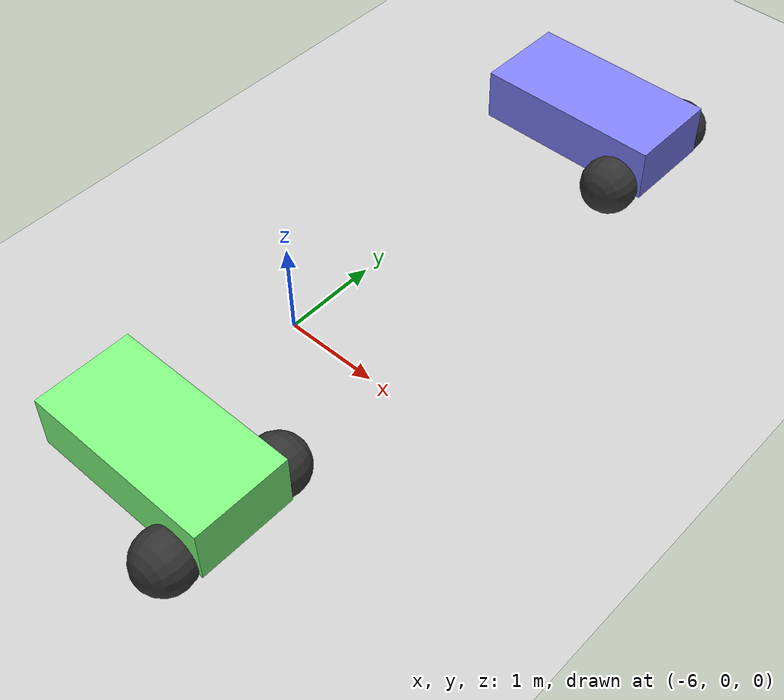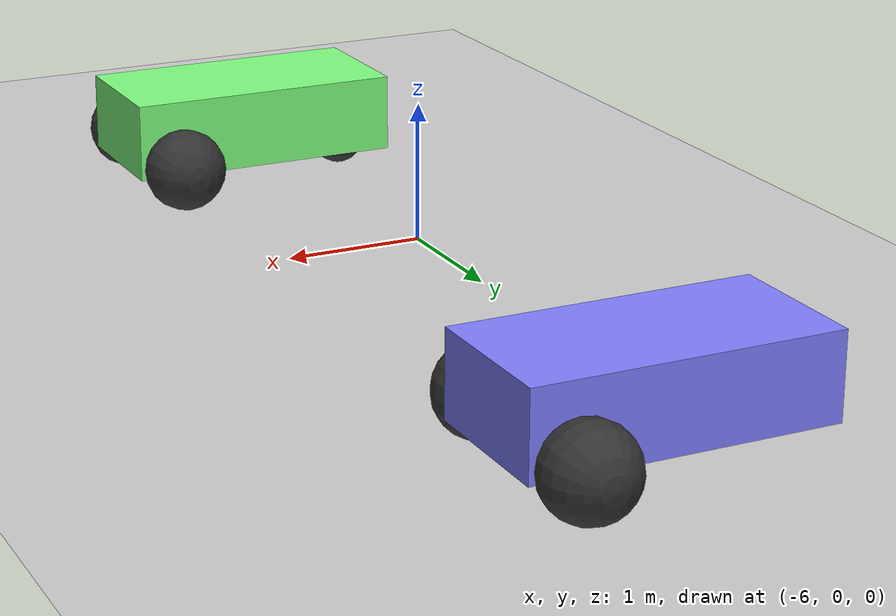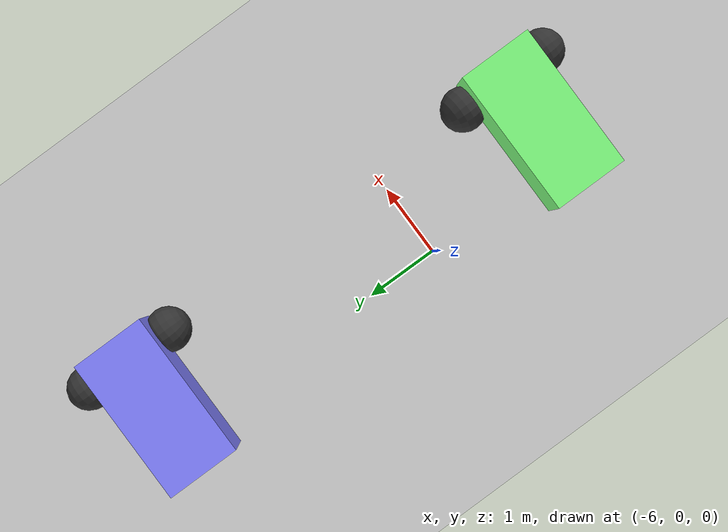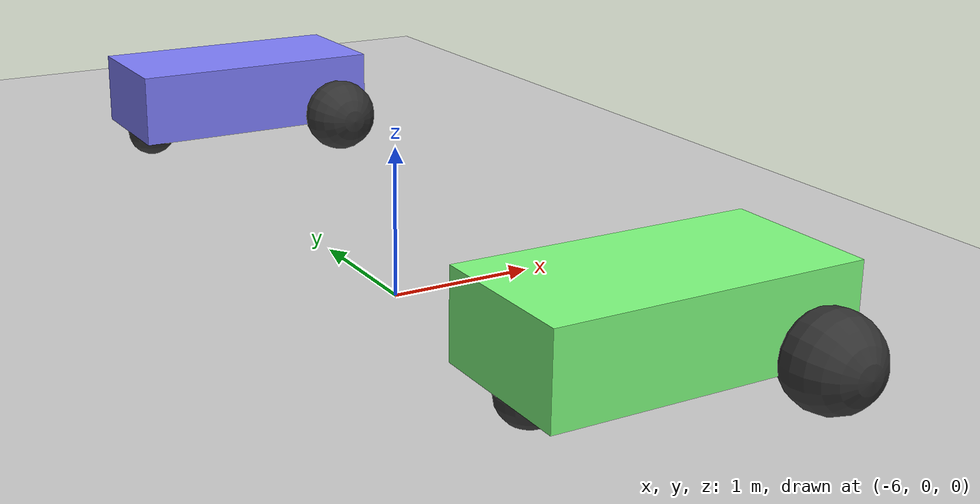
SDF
<sdf version="1.6">
 <world name="lookup_wheel_slip">
  <gravity>-1 0 -9.8</gravity>
  <physics name="1ms" type="ignored"><dart><collision_detector>bullet</collision_detector></dart></physics>
  <plugin filename="gz-sim-physics-system" name="gz::sim::systems::Physics"/>
  <plugin filename="gz-sim-user-commands-system" name="gz::sim::systems::UserCommands"/>
  <plugin filename="gz-sim-scene-broadcaster-system" name="gz::sim::systems::SceneBroadcaster"/>
  <model name="ground_plane">
   <static>true</static>
   <link name="link">
    <collision name="collision">
     <geometry><plane><normal>0 0 1</normal><size>100 100</size></plane></geometry>
    </collision>
    <visual name="visual">
     <geometry><plane><normal>0 0 1</normal><size>100 100</size></plane></geometry>
     <material>
      <ambient>0.8 0.8 0.8 1</ambient>
      <diffuse>0.8 0.8 0.8 1</diffuse>
      <specular>0.8 0.8 0.8 1</specular>
     </material>
    </visual>
   </link>
  </model>
  <light type="directional" name="sun">
   <pose>0 0 10 0 0 0</pose>
   <diffuse>1 1 1 1</diffuse>
   <specular>0.5 0.5 0.5 1</specular>
   <attenuation>
    <range>1000</range>
    <constant>0.9</constant>
    <linear>0.01</linear>
    <quadratic>0.001</quadratic>
   </attenuation>
   <direction>-0.5 0.1 -0.9</direction>
  </light>
  <model name="vehicle_green">
   <pose>-5.3105 -2 0.325 0 -0 0</pose>
   <link name="chassis">
    <pose>-0.151427 -0 0.175 0 -0 0</pose>
    <inertial>
     <mass>1.14395</mass>
     <inertia>
      <ixx>0.126164</ixx>
      <ixy>0</ixy>
      <ixz>0</ixz>
      <iyy>0.416519</iyy>
      <iyz>0</iyz>
      <izz>0.481014</izz>
     </inertia>
    </inertial>
    <visual name="visual">
     <geometry><box><size>2.01142 1 0.568726</size></box></geometry>
     <material>
      <ambient>0.5 1.0 0.5 1</ambient>
      <diffuse>0.5 1.0 0.5 1</diffuse>
      <specular>0.0 1.0 0.0 1</specular>
     </material>
    </visual>
    <collision name="collision"><geometry><box><size>2.01142 1 0.568726</size></box></geometry></collision>
   </link>
   <link name="left_wheel">
    <pose>0.554283 0.625029 -0.025 -1.5707 0 0</pose>
    <inertial>
     <mass>2</mass>
     <inertia><ixx>0.145833</ixx><ixy>0</ixy><ixz>0</ixz><iyy>0.145833</iyy><iyz>0</iyz><izz>0.125</izz></inertia>
    </inertial>
    <visual name="visual">
     <geometry><sphere><radius>0.3</radius></sphere></geometry>
     <material>
      <ambient>0.2 0.2 0.2 1</ambient>
      <diffuse>0.2 0.2 0.2 1</diffuse>
      <specular>0.2 0.2 0.2 1</specular>
     </material>
    </visual>
    <collision name="collision">
     <geometry><sphere><radius>0.3</radius></sphere></geometry>
     <surface>
      <friction>
       <ode><mu>1</mu><mu2>1</mu2><slip1>0.035</slip1><slip2>0</slip2><fdir1>0 0 1</fdir1></ode>
       <bullet><friction>1</friction><friction2>1</friction2><rolling_friction>0.1</rolling_friction></bullet>
      </friction>
     </surface>
    </collision>
   </link>
   <link name="right_wheel">
    <pose>0.554282 -0.625029 -0.025 -1.5707 0 0</pose>
    <inertial>
     <mass>2</mass>
     <inertia><ixx>0.145833</ixx><ixy>0</ixy><ixz>0</ixz><iyy>0.145833</iyy><iyz>0</iyz><izz>0.125</izz></inertia>
    </inertial>
    <visual name="visual">
     <geometry><sphere><radius>0.3</radius></sphere></geometry>
     <material>
      <ambient>0.2 0.2 0.2 1</ambient>
      <diffuse>0.2 0.2 0.2 1</diffuse>
      <specular>0.2 0.2 0.2 1</specular>
     </material>
    </visual>
    <collision name="collision">
     <geometry><sphere><radius>0.3</radius></sphere></geometry>
     <surface>
      <friction>
       <ode><mu>1</mu><mu2>1</mu2><slip1>0.035</slip1><slip2>0</slip2><fdir1>0 0 1</fdir1></ode>
       <bullet><friction>1</friction><friction2>1</friction2><rolling_friction>0.1</rolling_friction></bullet>
      </friction>
     </surface>
    </collision>
   </link>
   <link name="caster">
    <pose>-0.957138 -0 -0.125 0 -0 0</pose>
    <inertial>
     <mass>1</mass>
     <inertia><ixx>0.1</ixx><ixy>0</ixy><ixz>0</ixz><iyy>0.1</iyy><iyz>0</iyz><izz>0.1</izz></inertia>
    </inertial>
    <visual name="visual">
     <geometry><sphere><radius>0.2</radius></sphere></geometry>
     <material>
      <ambient>0.2 0.2 0.2 1</ambient>
      <diffuse>0.2 0.2 0.2 1</diffuse>
      <specular>0.2 0.2 0.2 1</specular>
     </material>
    </visual>
    <collision name="collision"><geometry><sphere><radius>0.2</radius></sphere></geometry></collision>
   </link>
   <joint name="left_wheel_joint" type="revolute">
    <parent>chassis</parent>
    <child>left_wheel</child>
    <axis><xyz>0 0 1</xyz><limit><lower>-1.79769e+308</lower><upper>1.79769e+308</upper></limit></axis>
   </joint>
   <joint name="right_wheel_joint" type="revolute">
    <parent>chassis</parent>
    <child>right_wheel</child>
    <axis><xyz>0 0 1</xyz><limit><lower>-1.79769e+308</lower><upper>1.79769e+308</upper></limit></axis>
   </joint>
   <joint name="caster_wheel" type="ball"><parent>chassis</parent><child>caster</child></joint>
   <plugin filename="gz-sim-diff-drive-system" name="gz::sim::systems::DiffDrive">
    <left_joint>left_wheel_joint</left_joint>
    <right_joint>right_wheel_joint</right_joint>
    <wheel_separation>1.25</wheel_separation>
    <wheel_radius>0.3</wheel_radius>
    <max_linear_acceleration>1</max_linear_acceleration>
    <min_linear_acceleration>-1</min_linear_acceleration>
    <max_angular_acceleration>2</max_angular_acceleration>
    <min_angular_acceleration>-2</min_angular_acceleration>
    <max_linear_velocity>0.5</max_linear_velocity>
    <min_linear_velocity>-0.5</min_linear_velocity>
    <max_angular_velocity>1</max_angular_velocity>
    <min_angular_velocity>-1</min_angular_velocity>
   </plugin>
   <plugin filename="gz-sim-wheel-slip-system" name="gz::sim::systems::WheelSlip">
    <wheel link_name="right_wheel">
     <slip_compliance_lateral>0.1</slip_compliance_lateral>
     <slip_compliance_longitudinal>0.1</slip_compliance_longitudinal>
     <wheel_normal_force>1</wheel_normal_force>
     <wheel_radius>0.3</wheel_radius>
    </wheel>
    <wheel link_name="left_wheel">
     <slip_compliance_lateral>0.1</slip_compliance_lateral>
     <slip_compliance_longitudinal>0.1</slip_compliance_longitudinal>
     <wheel_normal_force>1</wheel_normal_force>
     <wheel_radius>0.3</wheel_radius>
    </wheel>
   </plugin>
  </model>
  <model name="vehicle_blue">
   <pose>-5.3313 3.9740 0.325 0 -0 0</pose>
   <link name="chassis">
    <pose>-0.151427 -0 0.175 0 -0 0</pose>
    <inertial>
     <mass>1.14395</mass>
     <inertia>
      <ixx>0.126164</ixx>
      <ixy>0</ixy>
      <ixz>0</ixz>
      <iyy>0.416519</iyy>
      <iyz>0</iyz>
      <izz>0.481014</izz>
     </inertia>
    </inertial>
    <visual name="visual">
     <geometry><box><size>2.01142 1 0.568726</size></box></geometry>
     <material>
      <ambient>0.5 0.5 1.0 1</ambient>
      <diffuse>0.5 0.5 1.0 1</diffuse>
      <specular>0.0 0.0 1.0 1</specular>
     </material>
    </visual>
    <collision name="collision"><geometry><box><size>2.01142 1 0.568726</size></box></geometry></collision>
   </link>
   <link name="left_wheel">
    <pose>0.554283 0.625029 -0.025 -1.5707 0 0</pose>
    <inertial>
     <mass>2</mass>
     <inertia><ixx>0.145833</ixx><ixy>0</ixy><ixz>0</ixz><iyy>0.145833</iyy><iyz>0</iyz><izz>0.125</izz></inertia>
    </inertial>
    <visual name="visual">
     <geometry><sphere><radius>0.3</radius></sphere></geometry>
     <material>
      <ambient>0.2 0.2 0.2 1</ambient>
      <diffuse>0.2 0.2 0.2 1</diffuse>
      <specular>0.2 0.2 0.2 1</specular>
     </material>
    </visual>
    <collision name="collision">
     <geometry><sphere><radius>0.3</radius></sphere></geometry>
     <surface>
      <friction>
       <ode><mu>1</mu><mu2>1</mu2><slip1>0.035</slip1><slip2>0</slip2><fdir1>0 0 1</fdir1></ode>
       <bullet><friction>1</friction><friction2>1</friction2><rolling_friction>0.1</rolling_friction></bullet>
      </friction>
     </surface>
    </collision>
   </link>
   <link name="right_wheel">
    <pose>0.554282 -0.625029 -0.025 -1.5707 0 0</pose>
    <inertial>
     <mass>2</mass>
     <inertia><ixx>0.145833</ixx><ixy>0</ixy><ixz>0</ixz><iyy>0.145833</iyy><iyz>0</iyz><izz>0.125</izz></inertia>
    </inertial>
    <visual name="visual">
     <geometry><sphere><radius>0.3</radius></sphere></geometry>
     <material>
      <ambient>0.2 0.2 0.2 1</ambient>
      <diffuse>0.2 0.2 0.2 1</diffuse>
      <specular>0.2 0.2 0.2 1</specular>
     </material>
    </visual>
    <collision name="collision">
     <geometry><sphere><radius>0.3</radius></sphere></geometry>
     <surface>
      <friction>
       <ode><mu>1</mu><mu2>1</mu2><slip1>0.035</slip1><slip2>0</slip2><fdir1>0 0 1</fdir1></ode>
       <bullet><friction>1</friction><friction2>1</friction2><rolling_friction>0.1</rolling_friction></bullet>
      </friction>
     </surface>
    </collision>
   </link>
   <link name="caster">
    <pose>-0.957138 -0 -0.125 0 -0 0</pose>
    <inertial>
     <mass>1</mass>
     <inertia><ixx>0.1</ixx><ixy>0</ixy><ixz>0</ixz><iyy>0.1</iyy><iyz>0</iyz><izz>0.1</izz></inertia>
    </inertial>
    <visual name="visual">
     <geometry><sphere><radius>0.2</radius></sphere></geometry>
     <material>
      <ambient>0.2 0.2 0.2 1</ambient>
      <diffuse>0.2 0.2 0.2 1</diffuse>
      <specular>0.2 0.2 0.2 1</specular>
     </material>
    </visual>
    <collision name="collision"><geometry><sphere><radius>0.2</radius></sphere></geometry></collision>
   </link>
   <joint name="left_wheel_joint" type="revolute">
    <parent>chassis</parent>
    <child>left_wheel</child>
    <axis><xyz>0 0 1</xyz><limit><lower>-1.79769e+308</lower><upper>1.79769e+308</upper></limit></axis>
   </joint>
   <joint name="right_wheel_joint" type="revolute">
    <parent>chassis</parent>
    <child>right_wheel</child>
    <axis><xyz>0 0 1</xyz><limit><lower>-1.79769e+308</lower><upper>1.79769e+308</upper></limit></axis>
   </joint>
   <joint name="caster_wheel" type="ball"><parent>chassis</parent><child>caster</child></joint>
   <plugin filename="gz-sim-diff-drive-system" name="gz::sim::systems::DiffDrive">
    <left_joint>left_wheel_joint</left_joint>
    <right_joint>right_wheel_joint</right_joint>
    <wheel_separation>1.25</wheel_separation>
    <wheel_radius>0.3</wheel_radius>
    <odom_publish_frequency>1</odom_publish_frequency>
    <max_linear_acceleration>1</max_linear_acceleration>
    <min_linear_acceleration>-1</min_linear_acceleration>
    <max_angular_acceleration>2</max_angular_acceleration>
    <min_angular_acceleration>-2</min_angular_acceleration>
    <max_linear_velocity>0.5</max_linear_velocity>
    <min_linear_velocity>-0.5</min_linear_velocity>
    <max_angular_velocity>1</max_angular_velocity>
    <min_angular_velocity>-1</min_angular_velocity>
   </plugin>
   <plugin filename="gz-sim-wheel-slip-system" name="gz::sim::systems::WheelSlip">
    <wheel link_name="right_wheel">
     <slip_compliance_lateral>0.0</slip_compliance_lateral>
     <slip_compliance_longitudinal>0.0</slip_compliance_longitudinal>
     <wheel_normal_force>1</wheel_normal_force>
     <wheel_radius>0.3</wheel_radius>
    </wheel>
    <wheel link_name="left_wheel">
     <slip_compliance_lateral>0.0</slip_compliance_lateral>
     <slip_compliance_longitudinal>0.0</slip_compliance_longitudinal>
     <wheel_normal_force>1</wheel_normal_force>
     <wheel_radius>0.3</wheel_radius>
    </wheel>
   </plugin>
   <plugin filename="gz-sim-lookup-wheel-slip-system" name="gz::sim::systems::LookupWheelSlip">
    <slip_map>lookup_slip_map.png</slip_map>
    <size_x>129</size_x>
    <size_y>129</size_y>
    <slip_compliance_lateral_delta>0.05</slip_compliance_lateral_delta>
    <slip_compliance_longitudinal_delta>0.001</slip_compliance_longitudinal_delta>
    <friction_delta>0.5</friction_delta>
    <wheel_link_name>left_wheel</wheel_link_name>
    <wheel_link_name>right_wheel</wheel_link_name>
   </plugin>
  </model>
 </world>
</sdf>
